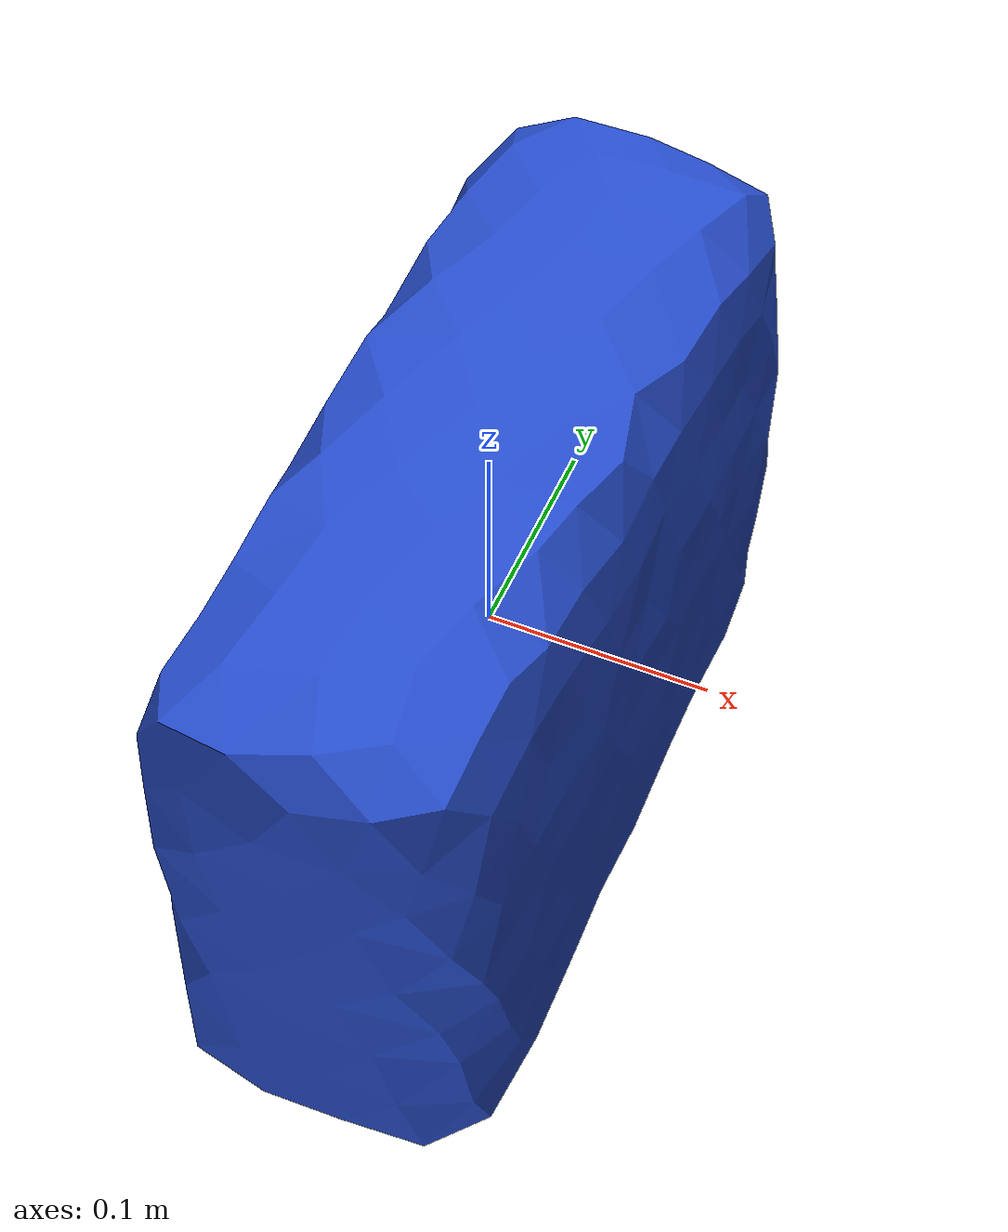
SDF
<?xml version="1.0" ?><sdf version="1.5"><model name="roblog-dhl-box-blue">
<link name="link">
<pose>0 0 0 0 0 0</pose>
<inertial>
<pose>0 0 -7.45058e-09 0 0 0</pose>
<mass>0.25</mass>
<inertia>
<ixx>0.00473605</ixx>
<ixy>0</ixy><iyy>0.00211491</iyy>
<ixz>0</ixz><iyz>0</iyz><izz>0.00363605</izz>
</inertia>
</inertial>
<visual name="visual">
<pose>0 0 0 0 0 0</pose>
<geometry><mesh><uri>model://roblog-dhl-box-blue/meshes/roblog-dhl-box-blue.dae</uri></mesh></geometry>
<material><script><uri>file://media/materials/scripts/gazebo.material</uri><name>Gazebo/BlueGlow</name></script></material></visual>
<collision name="collision"><pose>0 0 0 0 0 0</pose><geometry><mesh><uri>model://roblog-dhl-box-blue/meshes/roblog-dhl-box-blue.dae</uri></mesh></geometry>
<surface><friction><ode><mu>1.000000</mu><mu2>1.000000</mu2></ode></friction></surface>
</collision></link></model></sdf>
